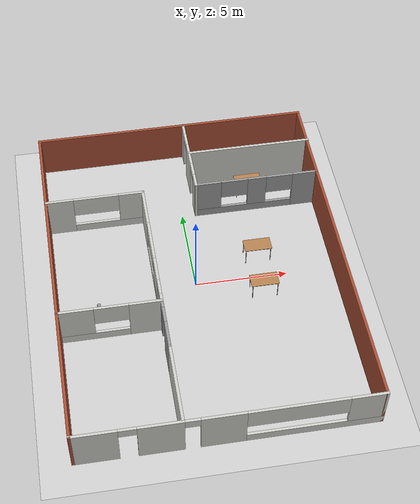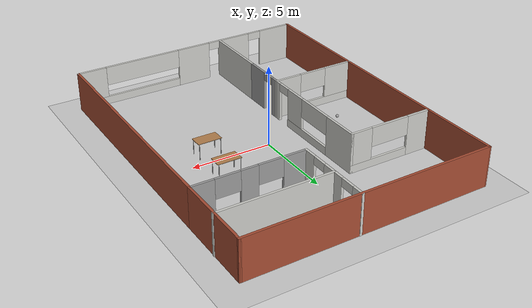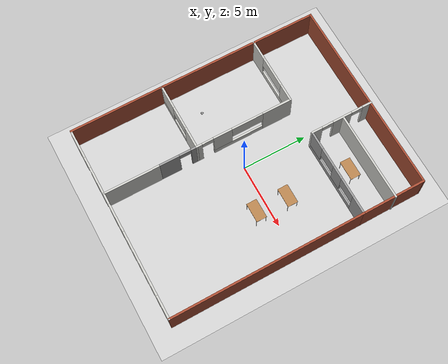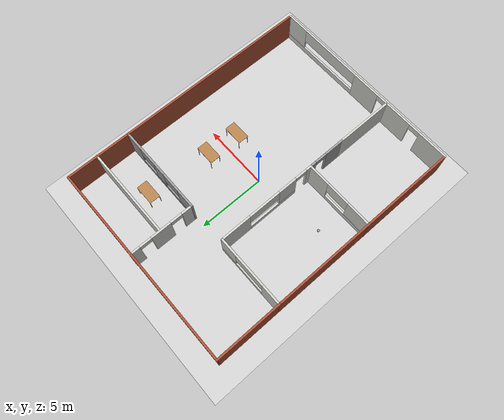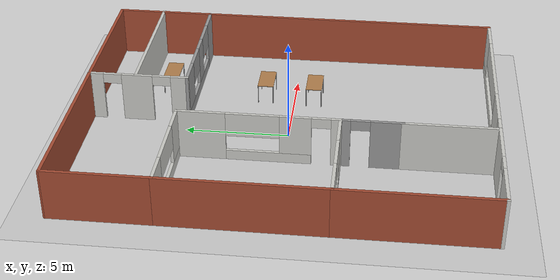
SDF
<sdf version="1.6">
 <world name="default">
  <plugin name="my_robot" filename="libmy_robot.so"/>
  <light name="sun" type="directional">
   <pose>0 0 10 0 -0 0</pose>
   <diffuse>0.8 0.8 0.8 1</diffuse>
   <specular>0.2 0.2 0.2 1</specular>
   <attenuation>
    <range>1000</range>
    <constant>0.9</constant>
    <linear>0.01</linear>
    <quadratic>0.001</quadratic>
   </attenuation>
   <direction>-0.5 0.1 -0.9</direction>
  </light>
  <model name="ground_plane">
   <static>1</static>
   <link name="link">
    <collision name="collision">
     <geometry><plane><normal>0 0 1</normal><size>100 100</size></plane></geometry>
     <surface>
      <contact><collide_bitmask>65535</collide_bitmask></contact>
      <friction><ode><mu>100</mu><mu2>50</mu2></ode></friction>
     </surface>
    </collision>
    <visual name="visual">
     <cast_shadows>0</cast_shadows>
     <geometry><plane><normal>0 0 1</normal><size>100 100</size></plane></geometry>
     <material>
      <script><uri>file://media/materials/scripts/gazebo.material</uri><name>Gazebo/Grey</name></script>
     </material>
    </visual>
   </link>
  </model>
  <gravity>0 0 -9.8</gravity>
  <magnetic_field>6e-06 2.3e-05 -4.2e-05</magnetic_field>
  <atmosphere type="adiabatic"/>
  <physics name="default_physics" default="0" type="ode">
   <max_step_size>0.001</max_step_size>
   <real_time_factor>1</real_time_factor>
   <real_time_update_rate>1000</real_time_update_rate>
  </physics>
  <scene><ambient>0.4 0.4 0.4 1</ambient><background>0.7 0.7 0.7 1</background><shadows>1</shadows></scene>
  <audio><device>default</device></audio>
  <spherical_coordinates>
   <surface_model>EARTH_WGS84</surface_model>
   <latitude_deg>0</latitude_deg>
   <longitude_deg>0</longitude_deg>
   <elevation>0</elevation>
   <heading_deg>0</heading_deg>
  </spherical_coordinates>
  <model name="house">
   <pose>0.08306 0.02682 0 0 -0 0</pose>
   <link name="Wall_10">
    <pose>-2.27041 -4.07512 0 0 -0 1.5708</pose>
    <visual name="Wall_10_Visual_0">
     <pose>-0.723472 0 1.25 0 -0 0</pose>
     <geometry><box><size>1.55306 0.15 2.5</size></box></geometry>
     <material>
      <script><uri>file://media/materials/scripts/gazebo.material</uri><name>Gazebo/Grey</name></script>
      <ambient>1 1 1 1</ambient>
     </material>
     <meta><layer>0</layer></meta>
    </visual>
    <collision name="Wall_10_Collision_0">
     <geometry><box><size>1.55306 0.15 2.5</size></box></geometry>
     <pose>-0.723472 0 1.25 0 -0 0</pose>
    </collision>
    <visual name="Wall_10_Visual_1">
     <pose>1.22653 0 1.25 0 -0 0</pose>
     <geometry><box><size>0.546944 0.15 2.5</size></box></geometry>
     <material>
      <script><uri>file://media/materials/scripts/gazebo.material</uri><name>Gazebo/Grey</name></script>
      <ambient>1 1 1 1</ambient>
     </material>
     <meta><layer>0</layer></meta>
    </visual>
    <collision name="Wall_10_Collision_1">
     <geometry><box><size>0.546944 0.15 2.5</size></box></geometry>
     <pose>1.22653 0 1.25 0 -0 0</pose>
    </collision>
    <visual name="Wall_10_Visual_2">
     <pose>0.503056 0 2.25 0 -0 0</pose>
     <geometry><box><size>0.9 0.15 0.5</size></box></geometry>
     <material>
      <script><uri>file://media/materials/scripts/gazebo.material</uri><name>Gazebo/Grey</name></script>
      <ambient>1 1 1 1</ambient>
     </material>
     <meta><layer>0</layer></meta>
    </visual>
    <collision name="Wall_10_Collision_2">
     <geometry><box><size>0.9 0.15 0.5</size></box></geometry>
     <pose>0.503056 0 2.25 0 -0 0</pose>
    </collision>
   </link>
   <link name="Wall_11">
    <pose>-4.94541 -2.65012 0 0 -0 3.14159</pose>
    <visual name="Wall_11_Visual_0">
     <pose>-1.86454 0 1.25 0 -0 0</pose>
     <geometry><box><size>1.77092 0.15 2.5</size></box></geometry>
     <material>
      <script><uri>file://media/materials/scripts/gazebo.material</uri><name>Gazebo/CeilingTiled</name></script>
      <ambient>1 1 1 1</ambient>
     </material>
     <meta><layer>0</layer></meta>
    </visual>
    <collision name="Wall_11_Collision_0">
     <geometry><box><size>1.77092 0.15 2.5</size></box></geometry>
     <pose>-1.86454 0 1.25 0 -0 0</pose>
    </collision>
    <visual name="Wall_11_Visual_1">
     <pose>0.885458 0 0.25 0 -0 0</pose>
     <geometry><box><size>3.72908 0.15 0.5</size></box></geometry>
     <material>
      <script><uri>file://media/materials/scripts/gazebo.material</uri><name>Gazebo/CeilingTiled</name></script>
      <ambient>1 1 1 1</ambient>
     </material>
     <meta><layer>0</layer></meta>
    </visual>
    <collision name="Wall_11_Collision_1">
     <geometry><box><size>3.72908 0.15 0.5</size></box></geometry>
     <pose>0.885458 0 0.25 0 -0 0</pose>
    </collision>
    <visual name="Wall_11_Visual_2">
     <pose>1.78546 0 1.5 0 -0 0</pose>
     <geometry><box><size>1.92908 0.15 2</size></box></geometry>
     <material>
      <script><uri>file://media/materials/scripts/gazebo.material</uri><name>Gazebo/CeilingTiled</name></script>
      <ambient>1 1 1 1</ambient>
     </material>
     <meta><layer>0</layer></meta>
    </visual>
    <collision name="Wall_11_Collision_2">
     <geometry><box><size>1.92908 0.15 2</size></box></geometry>
     <pose>1.78546 0 1.5 0 -0 0</pose>
    </collision>
    <visual name="Wall_11_Visual_3">
     <pose>-0.079083 0 1.9 0 -0 0</pose>
     <geometry><box><size>1.8 0.15 1.2</size></box></geometry>
     <material>
      <script><uri>file://media/materials/scripts/gazebo.material</uri><name>Gazebo/CeilingTiled</name></script>
      <ambient>1 1 1 1</ambient>
     </material>
     <meta><layer>0</layer></meta>
    </visual>
    <collision name="Wall_11_Collision_3">
     <geometry><box><size>1.8 0.15 1.2</size></box></geometry>
     <pose>-0.079083 0 1.9 0 -0 0</pose>
    </collision>
   </link>
   <link name="Wall_12">
    <collision name="Wall_12_Collision">
     <geometry><box><size>7.75 0.15 2.5</size></box></geometry>
     <pose>0 0 1.25 0 -0 0</pose>
    </collision>
    <visual name="Wall_12_Visual">
     <pose>0 0 1.25 0 -0 0</pose>
     <geometry><box><size>7.75 0.15 2.5</size></box></geometry>
     <material>
      <script><uri>file://media/materials/scripts/gazebo.material</uri><name>Gazebo/Bricks</name></script>
      <ambient>1 1 1 1</ambient>
     </material>
     <meta><layer>0</layer></meta>
    </visual>
    <pose>-7.62041 1.14988 0 0 -0 1.5708</pose>
   </link>
   <link name="Wall_13">
    <pose>-4.94541 4.94988 0 0 -0 0</pose>
    <visual name="Wall_13_Visual_0">
     <pose>-1.96046 0 1.25 0 -0 0</pose>
     <geometry><box><size>1.57908 0.15 2.5</size></box></geometry>
     <material>
      <script><uri>file://media/materials/scripts/gazebo.material</uri><name>Gazebo/CeilingTiled</name></script>
      <ambient>1 1 1 1</ambient>
     </material>
     <meta><layer>0</layer></meta>
    </visual>
    <collision name="Wall_13_Collision_0">
     <geometry><box><size>1.57908 0.15 2.5</size></box></geometry>
     <pose>-1.96046 0 1.25 0 -0 0</pose>
    </collision>
    <visual name="Wall_13_Visual_1">
     <pose>0.789542 0 0.25 0 -0 0</pose>
     <geometry><box><size>3.92092 0.15 0.5</size></box></geometry>
     <material>
      <script><uri>file://media/materials/scripts/gazebo.material</uri><name>Gazebo/CeilingTiled</name></script>
      <ambient>1 1 1 1</ambient>
     </material>
     <meta><layer>0</layer></meta>
    </visual>
    <collision name="Wall_13_Collision_1">
     <geometry><box><size>3.92092 0.15 0.5</size></box></geometry>
     <pose>0.789542 0 0.25 0 -0 0</pose>
    </collision>
    <visual name="Wall_13_Visual_2">
     <pose>2.03954 0 1.5 0 -0 0</pose>
     <geometry><box><size>1.42092 0.15 2</size></box></geometry>
     <material>
      <script><uri>file://media/materials/scripts/gazebo.material</uri><name>Gazebo/CeilingTiled</name></script>
      <ambient>1 1 1 1</ambient>
     </material>
     <meta><layer>0</layer></meta>
    </visual>
    <collision name="Wall_13_Collision_2">
     <geometry><box><size>1.42092 0.15 2</size></box></geometry>
     <pose>2.03954 0 1.5 0 -0 0</pose>
    </collision>
    <visual name="Wall_13_Visual_3">
     <pose>0.079083 0 1.9 0 -0 0</pose>
     <geometry><box><size>2.5 0.15 1.2</size></box></geometry>
     <material>
      <script><uri>file://media/materials/scripts/gazebo.material</uri><name>Gazebo/CeilingTiled</name></script>
      <ambient>1 1 1 1</ambient>
     </material>
     <meta><layer>0</layer></meta>
    </visual>
    <collision name="Wall_13_Collision_3">
     <geometry><box><size>2.5 0.15 1.2</size></box></geometry>
     <pose>0.079083 0 1.9 0 -0 0</pose>
    </collision>
   </link>
   <link name="Wall_14">
    <pose>-2.27041 1.14988 0 0 -0 -1.5708</pose>
    <visual name="Wall_14_Visual_0">
     <pose>-2.69133 0 1.25 0 -0 0</pose>
     <geometry><box><size>2.36734 0.15 2.5</size></box></geometry>
     <material>
      <script><uri>file://media/materials/scripts/gazebo.material</uri><name>Gazebo/CeilingTiled</name></script>
      <ambient>1 1 1 1</ambient>
     </material>
     <meta><layer>0</layer></meta>
    </visual>
    <collision name="Wall_14_Collision_0">
     <geometry><box><size>2.36734 0.15 2.5</size></box></geometry>
     <pose>-2.69133 0 1.25 0 -0 0</pose>
    </collision>
    <visual name="Wall_14_Visual_1">
     <pose>3.62789 0 1.25 0 -0 0</pose>
     <geometry><box><size>0.494227 0.15 2.5</size></box></geometry>
     <material>
      <script><uri>file://media/materials/scripts/gazebo.material</uri><name>Gazebo/CeilingTiled</name></script>
      <ambient>1 1 1 1</ambient>
     </material>
     <meta><layer>0</layer></meta>
    </visual>
    <collision name="Wall_14_Collision_1">
     <geometry><box><size>0.494227 0.15 2.5</size></box></geometry>
     <pose>3.62789 0 1.25 0 -0 0</pose>
    </collision>
    <visual name="Wall_14_Visual_2">
     <pose>0.486554 0 0.25 0 -0 0</pose>
     <geometry><box><size>3.98844 0.15 0.5</size></box></geometry>
     <material>
      <script><uri>file://media/materials/scripts/gazebo.material</uri><name>Gazebo/CeilingTiled</name></script>
      <ambient>1 1 1 1</ambient>
     </material>
     <meta><layer>0</layer></meta>
    </visual>
    <collision name="Wall_14_Collision_2">
     <geometry><box><size>3.98844 0.15 0.5</size></box></geometry>
     <pose>0.486554 0 0.25 0 -0 0</pose>
    </collision>
    <visual name="Wall_14_Visual_3">
     <pose>1.73655 0 1.5 0 -0 0</pose>
     <geometry><box><size>1.48844 0.15 2</size></box></geometry>
     <material>
      <script><uri>file://media/materials/scripts/gazebo.material</uri><name>Gazebo/CeilingTiled</name></script>
      <ambient>1 1 1 1</ambient>
     </material>
     <meta><layer>0</layer></meta>
    </visual>
    <collision name="Wall_14_Collision_3">
     <geometry><box><size>1.48844 0.15 2</size></box></geometry>
     <pose>1.73655 0 1.5 0 -0 0</pose>
    </collision>
    <visual name="Wall_14_Visual_4">
     <pose>-0.257665 0 1.9 0 -0 0</pose>
     <geometry><box><size>2.5 0.15 1.2</size></box></geometry>
     <material>
      <script><uri>file://media/materials/scripts/gazebo.material</uri><name>Gazebo/CeilingTiled</name></script>
      <ambient>1 1 1 1</ambient>
     </material>
     <meta><layer>0</layer></meta>
    </visual>
    <collision name="Wall_14_Collision_4">
     <geometry><box><size>2.5 0.15 1.2</size></box></geometry>
     <pose>-0.257665 0 1.9 0 -0 0</pose>
    </collision>
    <visual name="Wall_14_Visual_5">
     <pose>2.93077 0 2.25 0 -0 0</pose>
     <geometry><box><size>0.9 0.15 0.5</size></box></geometry>
     <material>
      <script><uri>file://media/materials/scripts/gazebo.material</uri><name>Gazebo/CeilingTiled</name></script>
      <ambient>1 1 1 1</ambient>
     </material>
     <meta><layer>0</layer></meta>
    </visual>
    <collision name="Wall_14_Collision_5">
     <geometry><box><size>0.9 0.15 0.5</size></box></geometry>
     <pose>2.93077 0 2.25 0 -0 0</pose>
    </collision>
   </link>
   <link name="Wall_21">
    <pose>-4.94541 -9.85012 0 0 -0 3.14159</pose>
    <visual name="Wall_21_Visual_0">
     <pose>-1.61931 0 1.25 0 -0 0</pose>
     <geometry><box><size>2.26137 0.15 2.5</size></box></geometry>
     <material>
      <script><uri>file://media/materials/scripts/gazebo.material</uri><name>Gazebo/CeilingTiled</name></script>
      <ambient>1 1 1 1</ambient>
     </material>
     <meta><layer>0</layer></meta>
    </visual>
    <collision name="Wall_21_Collision_0">
     <geometry><box><size>2.26137 0.15 2.5</size></box></geometry>
     <pose>-1.61931 0 1.25 0 -0 0</pose>
    </collision>
    <visual name="Wall_21_Visual_1">
     <pose>1.58069 0 1.25 0 -0 0</pose>
     <geometry><box><size>2.33863 0.15 2.5</size></box></geometry>
     <material>
      <script><uri>file://media/materials/scripts/gazebo.material</uri><name>Gazebo/CeilingTiled</name></script>
      <ambient>1 1 1 1</ambient>
     </material>
     <meta><layer>0</layer></meta>
    </visual>
    <collision name="Wall_21_Collision_1">
     <geometry><box><size>2.33863 0.15 2.5</size></box></geometry>
     <pose>1.58069 0 1.25 0 -0 0</pose>
    </collision>
    <visual name="Wall_21_Visual_2">
     <pose>-0.038628 0 2.25 0 -0 0</pose>
     <geometry><box><size>0.9 0.15 0.5</size></box></geometry>
     <material>
      <script><uri>file://media/materials/scripts/gazebo.material</uri><name>Gazebo/CeilingTiled</name></script>
      <ambient>1 1 1 1</ambient>
     </material>
     <meta><layer>0</layer></meta>
    </visual>
    <collision name="Wall_21_Collision_2">
     <geometry><box><size>0.9 0.15 0.5</size></box></geometry>
     <pose>-0.038628 0 2.25 0 -0 0</pose>
    </collision>
   </link>
   <link name="Wall_22">
    <collision name="Wall_22_Collision">
     <geometry><box><size>7.35 0.15 2.5</size></box></geometry>
     <pose>0 0 1.25 0 -0 0</pose>
    </collision>
    <visual name="Wall_22_Visual">
     <pose>0 0 1.25 0 -0 0</pose>
     <geometry><box><size>7.35 0.15 2.5</size></box></geometry>
     <material>
      <script><uri>file://media/materials/scripts/gazebo.material</uri><name>Gazebo/Bricks</name></script>
      <ambient>1 1 1 1</ambient>
     </material>
     <meta><layer>0</layer></meta>
    </visual>
    <pose>-7.62041 -6.25012 0 0 -0 1.5708</pose>
   </link>
   <link name="Wall_24">
    <collision name="Wall_24_Collision">
     <geometry><box><size>5 0.15 2.5</size></box></geometry>
     <pose>0 0 1.25 0 -0 0</pose>
    </collision>
    <visual name="Wall_24_Visual">
     <pose>0 0 1.25 0 -0 0</pose>
     <geometry><box><size>5 0.15 2.5</size></box></geometry>
     <material>
      <script><uri>file://media/materials/scripts/gazebo.material</uri><name>Gazebo/Bricks</name></script>
      <ambient>1 1 1 1</ambient>
     </material>
     <meta><layer>0</layer></meta>
    </visual>
    <pose>-7.62041 7.37488 0 0 -0 1.5708</pose>
   </link>
   <link name="Wall_28">
    <collision name="Wall_28_Collision">
     <geometry><box><size>5 0.15 2.5</size></box></geometry>
     <pose>0 0 1.25 0 -0 0</pose>
    </collision>
    <visual name="Wall_28_Visual">
     <pose>0 0 1.25 0 -0 0</pose>
     <geometry><box><size>5 0.15 2.5</size></box></geometry>
     <material>
      <script><uri>file://media/materials/scripts/gazebo.material</uri><name>Gazebo/Bricks</name></script>
      <ambient>1 1 1 1</ambient>
     </material>
     <meta><layer>0</layer></meta>
    </visual>
    <pose>7.57959 7.42488 0 0 -0 1.5708</pose>
   </link>
   <link name="Wall_29">
    <collision name="Wall_29_Collision">
     <geometry><box><size>15.3501 0.15 2.5</size></box></geometry>
     <pose>0 0 1.25 0 -0 0</pose>
    </collision>
    <visual name="Wall_29_Visual">
     <pose>0 0 1.25 0 -0 0</pose>
     <geometry><box><size>15.3501 0.15 2.5</size></box></geometry>
     <material>
      <script><uri>file://media/materials/scripts/gazebo.material</uri><name>Gazebo/Bricks</name></script>
      <ambient>1 1 1 1</ambient>
     </material>
     <meta><layer>0</layer></meta>
    </visual>
    <pose>-0.02041 9.82488 0 0 -0 -3.1383</pose>
   </link>
   <link name="Wall_31">
    <pose>0.72959 7.42488 0 0 -0 1.5708</pose>
    <visual name="Wall_31_Visual_0">
     <pose>-2.05633 0 1.25 0 -0 0</pose>
     <geometry><box><size>0.887335 0.15 2.5</size></box></geometry>
     <material>
      <script><uri>file://media/materials/scripts/gazebo.material</uri><name>Gazebo/CeilingTiled</name></script>
      <ambient>1 1 1 1</ambient>
     </material>
     <meta><layer>0</layer></meta>
    </visual>
    <collision name="Wall_31_Collision_0">
     <geometry><box><size>0.887335 0.15 2.5</size></box></geometry>
     <pose>-2.05633 0 1.25 0 -0 0</pose>
    </collision>
    <visual name="Wall_31_Visual_1">
     <pose>0.051002 0 1.25 0 -0 0</pose>
     <geometry><box><size>1.52734 0.15 2.5</size></box></geometry>
     <material>
      <script><uri>file://media/materials/scripts/gazebo.material</uri><name>Gazebo/CeilingTiled</name></script>
      <ambient>1 1 1 1</ambient>
     </material>
     <meta><layer>0</layer></meta>
    </visual>
    <collision name="Wall_31_Collision_1">
     <geometry><box><size>1.52734 0.15 2.5</size></box></geometry>
     <pose>0.051002 0 1.25 0 -0 0</pose>
    </collision>
    <visual name="Wall_31_Visual_2">
     <pose>2.10733 0 1.25 0 -0 0</pose>
     <geometry><box><size>0.785331 0.15 2.5</size></box></geometry>
     <material>
      <script><uri>file://media/materials/scripts/gazebo.material</uri><name>Gazebo/CeilingTiled</name></script>
      <ambient>1 1 1 1</ambient>
     </material>
     <meta><layer>0</layer></meta>
    </visual>
    <collision name="Wall_31_Collision_2">
     <geometry><box><size>0.785331 0.15 2.5</size></box></geometry>
     <pose>2.10733 0 1.25 0 -0 0</pose>
    </collision>
    <visual name="Wall_31_Visual_3">
     <pose>-1.16267 0 2.25 0 -0 0</pose>
     <geometry><box><size>0.9 0.15 0.5</size></box></geometry>
     <material>
      <script><uri>file://media/materials/scripts/gazebo.material</uri><name>Gazebo/CeilingTiled</name></script>
      <ambient>1 1 1 1</ambient>
     </material>
     <meta><layer>0</layer></meta>
    </visual>
    <collision name="Wall_31_Collision_3">
     <geometry><box><size>0.9 0.15 0.5</size></box></geometry>
     <pose>-1.16267 0 2.25 0 -0 0</pose>
    </collision>
    <visual name="Wall_31_Visual_4">
     <pose>1.26467 0 2.25 0 -0 0</pose>
     <geometry><box><size>0.9 0.15 0.5</size></box></geometry>
     <material>
      <script><uri>file://media/materials/scripts/gazebo.material</uri><name>Gazebo/CeilingTiled</name></script>
      <ambient>1 1 1 1</ambient>
     </material>
     <meta><layer>0</layer></meta>
    </visual>
    <collision name="Wall_31_Collision_4">
     <geometry><box><size>0.9 0.15 0.5</size></box></geometry>
     <pose>1.26467 0 2.25 0 -0 0</pose>
    </collision>
   </link>
   <link name="Wall_35">
    <collision name="Wall_35_Collision">
     <geometry><box><size>7 0.15 2.5</size></box></geometry>
     <pose>0 0 1.25 0 -0 0</pose>
    </collision>
    <visual name="Wall_35_Visual">
     <pose>0 0 1.25 0 -0 0</pose>
     <geometry><box><size>7 0.15 2.5</size></box></geometry>
     <material>
      <script><uri>file://media/materials/scripts/gazebo.material</uri><name>Gazebo/CeilingTiled</name></script>
      <ambient>1 1 1 1</ambient>
     </material>
     <meta><layer>0</layer></meta>
    </visual>
    <pose>4.19566 7.53969 0 0 -0 0</pose>
   </link>
   <link name="Wall_4">
    <pose>2.65459 -9.85012 0 0 -0 0</pose>
    <visual name="Wall_4_Visual_0">
     <pose>-4.99212 0 1.25 0 -0 0</pose>
     <geometry><box><size>0.015765 0.15 2.5</size></box></geometry>
     <material>
      <script><uri>file://media/materials/scripts/gazebo.material</uri><name>Gazebo/CeilingTiled</name></script>
      <ambient>1 1 1 1</ambient>
     </material>
     <meta><layer>0</layer></meta>
    </visual>
    <collision name="Wall_4_Collision_0">
     <geometry><box><size>0.015765 0.15 2.5</size></box></geometry>
     <pose>-4.99212 0 1.25 0 -0 0</pose>
    </collision>
    <visual name="Wall_4_Visual_1">
     <pose>-2.96656 0 1.25 0 -0 0</pose>
     <geometry><box><size>2.23535 0.15 2.5</size></box></geometry>
     <material>
      <script><uri>file://media/materials/scripts/gazebo.material</uri><name>Gazebo/CeilingTiled</name></script>
      <ambient>1 1 1 1</ambient>
     </material>
     <meta><layer>0</layer></meta>
    </visual>
    <collision name="Wall_4_Collision_1">
     <geometry><box><size>2.23535 0.15 2.5</size></box></geometry>
     <pose>-2.96656 0 1.25 0 -0 0</pose>
    </collision>
    <visual name="Wall_4_Visual_2">
     <pose>1.57556 0 0.25 0 -0 0</pose>
     <geometry><box><size>6.84889 0.15 0.5</size></box></geometry>
     <material>
      <script><uri>file://media/materials/scripts/gazebo.material</uri><name>Gazebo/CeilingTiled</name></script>
      <ambient>1 1 1 1</ambient>
     </material>
     <meta><layer>0</layer></meta>
    </visual>
    <collision name="Wall_4_Collision_2">
     <geometry><box><size>6.84889 0.15 0.5</size></box></geometry>
     <pose>1.57556 0 0.25 0 -0 0</pose>
    </collision>
    <visual name="Wall_4_Visual_3">
     <pose>4.07555 0 1.5 0 -0 0</pose>
     <geometry><box><size>1.84889 0.15 2</size></box></geometry>
     <material>
      <script><uri>file://media/materials/scripts/gazebo.material</uri><name>Gazebo/CeilingTiled</name></script>
      <ambient>1 1 1 1</ambient>
     </material>
     <meta><layer>0</layer></meta>
    </visual>
    <collision name="Wall_4_Collision_3">
     <geometry><box><size>1.84889 0.15 2</size></box></geometry>
     <pose>4.07555 0 1.5 0 -0 0</pose>
    </collision>
    <visual name="Wall_4_Visual_4">
     <pose>0.65111 0 1.9 0 -0 0</pose>
     <geometry><box><size>5 0.15 1.2</size></box></geometry>
     <material>
      <script><uri>file://media/materials/scripts/gazebo.material</uri><name>Gazebo/CeilingTiled</name></script>
      <ambient>1 1 1 1</ambient>
     </material>
     <meta><layer>0</layer></meta>
    </visual>
    <collision name="Wall_4_Collision_4">
     <geometry><box><size>5 0.15 1.2</size></box></geometry>
     <pose>0.65111 0 1.9 0 -0 0</pose>
    </collision>
    <visual name="Wall_4_Visual_5">
     <pose>-4.53423 0 2.25 0 -0 0</pose>
     <geometry><box><size>0.9 0.15 0.5</size></box></geometry>
     <material>
      <script><uri>file://media/materials/scripts/gazebo.material</uri><name>Gazebo/CeilingTiled</name></script>
      <ambient>1 1 1 1</ambient>
     </material>
     <meta><layer>0</layer></meta>
    </visual>
    <collision name="Wall_4_Collision_5">
     <geometry><box><size>0.9 0.15 0.5</size></box></geometry>
     <pose>-4.53423 0 2.25 0 -0 0</pose>
    </collision>
   </link>
   <link name="Wall_5">
    <collision name="Wall_5_Collision">
     <geometry><box><size>15 0.15 2.5</size></box></geometry>
     <pose>0 0 1.25 0 -0 0</pose>
    </collision>
    <visual name="Wall_5_Visual">
     <pose>0 0 1.25 0 -0 0</pose>
     <geometry><box><size>15 0.15 2.5</size></box></geometry>
     <material>
      <script><uri>file://media/materials/scripts/gazebo.material</uri><name>Gazebo/Bricks</name></script>
      <ambient>1 1 1 1</ambient>
     </material>
     <meta><layer>0</layer></meta>
    </visual>
    <pose>7.57959 -2.42512 0 0 -0 1.5708</pose>
   </link>
   <link name="Wall_7">
    <pose>4.15459 4.99988 0 0 -0 3.14159</pose>
    <visual name="Wall_7_Visual_0">
     <pose>-2.77263 0 1.25 0 -0 0</pose>
     <geometry><box><size>1.45474 0.15 2.5</size></box></geometry>
     <material>
      <script><uri>file://media/materials/scripts/gazebo.material</uri><name>Gazebo/Grey</name></script>
      <ambient>1 1 1 1</ambient>
     </material>
     <meta><layer>0</layer></meta>
    </visual>
    <collision name="Wall_7_Collision_0">
     <geometry><box><size>1.45474 0.15 2.5</size></box></geometry>
     <pose>-2.77263 0 1.25 0 -0 0</pose>
    </collision>
    <visual name="Wall_7_Visual_1">
     <pose>0.727372 0 0.25 0 -0 0</pose>
     <geometry><box><size>5.54526 0.15 0.5</size></box></geometry>
     <material>
      <script><uri>file://media/materials/scripts/gazebo.material</uri><name>Gazebo/Grey</name></script>
      <ambient>1 1 1 1</ambient>
     </material>
     <meta><layer>0</layer></meta>
    </visual>
    <collision name="Wall_7_Collision_1">
     <geometry><box><size>5.54526 0.15 0.5</size></box></geometry>
     <pose>0.727372 0 0.25 0 -0 0</pose>
    </collision>
    <visual name="Wall_7_Visual_2">
     <pose>-0.020905 0 1.5 0 -0 0</pose>
     <geometry><box><size>1.0487 0.15 2</size></box></geometry>
     <material>
      <script><uri>file://media/materials/scripts/gazebo.material</uri><name>Gazebo/Grey</name></script>
      <ambient>1 1 1 1</ambient>
     </material>
     <meta><layer>0</layer></meta>
    </visual>
    <collision name="Wall_7_Collision_2">
     <geometry><box><size>1.0487 0.15 2</size></box></geometry>
     <pose>-0.020905 0 1.5 0 -0 0</pose>
    </collision>
    <visual name="Wall_7_Visual_3">
     <pose>2.75172 0 1.5 0 -0 0</pose>
     <geometry><box><size>1.49655 0.15 2</size></box></geometry>
     <material>
      <script><uri>file://media/materials/scripts/gazebo.material</uri><name>Gazebo/Grey</name></script>
      <ambient>1 1 1 1</ambient>
     </material>
     <meta><layer>0</layer></meta>
    </visual>
    <collision name="Wall_7_Collision_3">
     <geometry><box><size>1.49655 0.15 2</size></box></geometry>
     <pose>2.75172 0 1.5 0 -0 0</pose>
    </collision>
    <visual name="Wall_7_Visual_4">
     <pose>-1.29526 0 1.9 0 -0 0</pose>
     <geometry><box><size>1.5 0.15 1.2</size></box></geometry>
     <material>
      <script><uri>file://media/materials/scripts/gazebo.material</uri><name>Gazebo/Grey</name></script>
      <ambient>1 1 1 1</ambient>
     </material>
     <meta><layer>0</layer></meta>
    </visual>
    <collision name="Wall_7_Collision_4">
     <geometry><box><size>1.5 0.15 1.2</size></box></geometry>
     <pose>-1.29526 0 1.9 0 -0 0</pose>
    </collision>
    <visual name="Wall_7_Visual_5">
     <pose>1.25345 0 1.9 0 -0 0</pose>
     <geometry><box><size>1.5 0.15 1.2</size></box></geometry>
     <material>
      <script><uri>file://media/materials/scripts/gazebo.material</uri><name>Gazebo/Grey</name></script>
      <ambient>1 1 1 1</ambient>
     </material>
     <meta><layer>0</layer></meta>
    </visual>
    <collision name="Wall_7_Collision_5">
     <geometry><box><size>1.5 0.15 1.2</size></box></geometry>
     <pose>1.25345 0 1.9 0 -0 0</pose>
    </collision>
   </link>
   <link name="Wall_9">
    <collision name="Wall_9_Collision">
     <geometry><box><size>4.5 0.15 2.5</size></box></geometry>
     <pose>0 0 1.25 0 -0 0</pose>
    </collision>
    <visual name="Wall_9_Visual">
     <pose>0 0 1.25 0 -0 0</pose>
     <geometry><box><size>4.5 0.15 2.5</size></box></geometry>
     <material>
      <script><uri>file://media/materials/scripts/gazebo.material</uri><name>Gazebo/CeilingTiled</name></script>
      <ambient>1 1 1 1</ambient>
     </material>
     <meta><layer>0</layer></meta>
    </visual>
    <pose>-2.27041 -7.67512 0 0 -0 1.5708</pose>
   </link>
   <static>1</static>
  </model>
  <model name="table">
   <static>1</static>
   <link name="link">
    <collision name="surface">
     <pose>0 0 1 0 -0 0</pose>
     <geometry><box><size>1.5 0.8 0.03</size></box></geometry>
     <surface><friction><ode><mu>0.6</mu><mu2>0.6</mu2></ode></friction></surface>
    </collision>
    <visual name="visual1">
     <pose>0 0 1 0 -0 0</pose>
     <geometry><box><size>1.5 0.8 0.03</size></box></geometry>
     <material>
      <script><uri>file://media/materials/scripts/gazebo.material</uri><name>Gazebo/Wood</name></script>
     </material>
    </visual>
    <collision name="front_left_leg">
     <pose>0.68 0.38 0.5 0 -0 0</pose>
     <geometry><cylinder><radius>0.02</radius><length>1</length></cylinder></geometry>
    </collision>
    <visual name="front_left_leg">
     <pose>0.68 0.38 0.5 0 -0 0</pose>
     <geometry><cylinder><radius>0.02</radius><length>1</length></cylinder></geometry>
     <material>
      <script><uri>file://media/materials/scripts/gazebo.material</uri><name>Gazebo/Grey</name></script>
     </material>
    </visual>
    <collision name="front_right_leg">
     <pose>0.68 -0.38 0.5 0 -0 0</pose>
     <geometry><cylinder><radius>0.02</radius><length>1</length></cylinder></geometry>
    </collision>
    <visual name="front_right_leg">
     <pose>0.68 -0.38 0.5 0 -0 0</pose>
     <geometry><cylinder><radius>0.02</radius><length>1</length></cylinder></geometry>
     <material>
      <script><uri>file://media/materials/scripts/gazebo.material</uri><name>Gazebo/Grey</name></script>
     </material>
    </visual>
    <collision name="back_right_leg">
     <pose>-0.68 -0.38 0.5 0 -0 0</pose>
     <geometry><cylinder><radius>0.02</radius><length>1</length></cylinder></geometry>
    </collision>
    <visual name="back_right_leg">
     <pose>-0.68 -0.38 0.5 0 -0 0</pose>
     <geometry><cylinder><radius>0.02</radius><length>1</length></cylinder></geometry>
     <material>
      <script><uri>file://media/materials/scripts/gazebo.material</uri><name>Gazebo/Grey</name></script>
     </material>
    </visual>
    <collision name="back_left_leg">
     <pose>-0.68 0.38 0.5 0 -0 0</pose>
     <geometry><cylinder><radius>0.02</radius><length>1</length></cylinder></geometry>
    </collision>
    <visual name="back_left_leg">
     <pose>-0.68 0.38 0.5 0 -0 0</pose>
     <geometry><cylinder><radius>0.02</radius><length>1</length></cylinder></geometry>
     <material>
      <script><uri>file://media/materials/scripts/gazebo.material</uri><name>Gazebo/Grey</name></script>
     </material>
    </visual>
   </link>
   <pose>3.62853 1.45791 0 0 -0 0</pose>
  </model>
  <model name="table_0">
   <static>1</static>
   <link name="link">
    <collision name="surface">
     <pose>0 0 1 0 -0 0</pose>
     <geometry><box><size>1.5 0.8 0.03</size></box></geometry>
     <surface><friction><ode><mu>0.6</mu><mu2>0.6</mu2></ode></friction></surface>
    </collision>
    <visual name="visual1">
     <pose>0 0 1 0 -0 0</pose>
     <geometry><box><size>1.5 0.8 0.03</size></box></geometry>
     <material>
      <script><uri>file://media/materials/scripts/gazebo.material</uri><name>Gazebo/Wood</name></script>
     </material>
    </visual>
    <collision name="front_left_leg">
     <pose>0.68 0.38 0.5 0 -0 0</pose>
     <geometry><cylinder><radius>0.02</radius><length>1</length></cylinder></geometry>
    </collision>
    <visual name="front_left_leg">
     <pose>0.68 0.38 0.5 0 -0 0</pose>
     <geometry><cylinder><radius>0.02</radius><length>1</length></cylinder></geometry>
     <material>
      <script><uri>file://media/materials/scripts/gazebo.material</uri><name>Gazebo/Grey</name></script>
     </material>
    </visual>
    <collision name="front_right_leg">
     <pose>0.68 -0.38 0.5 0 -0 0</pose>
     <geometry><cylinder><radius>0.02</radius><length>1</length></cylinder></geometry>
    </collision>
    <visual name="front_right_leg">
     <pose>0.68 -0.38 0.5 0 -0 0</pose>
     <geometry><cylinder><radius>0.02</radius><length>1</length></cylinder></geometry>
     <material>
      <script><uri>file://media/materials/scripts/gazebo.material</uri><name>Gazebo/Grey</name></script>
     </material>
    </visual>
    <collision name="back_right_leg">
     <pose>-0.68 -0.38 0.5 0 -0 0</pose>
     <geometry><cylinder><radius>0.02</radius><length>1</length></cylinder></geometry>
    </collision>
    <visual name="back_right_leg">
     <pose>-0.68 -0.38 0.5 0 -0 0</pose>
     <geometry><cylinder><radius>0.02</radius><length>1</length></cylinder></geometry>
     <material>
      <script><uri>file://media/materials/scripts/gazebo.material</uri><name>Gazebo/Grey</name></script>
     </material>
    </visual>
    <collision name="back_left_leg">
     <pose>-0.68 0.38 0.5 0 -0 0</pose>
     <geometry><cylinder><radius>0.02</radius><length>1</length></cylinder></geometry>
    </collision>
    <visual name="back_left_leg">
     <pose>-0.68 0.38 0.5 0 -0 0</pose>
     <geometry><cylinder><radius>0.02</radius><length>1</length></cylinder></geometry>
     <material>
      <script><uri>file://media/materials/scripts/gazebo.material</uri><name>Gazebo/Grey</name></script>
     </material>
    </visual>
   </link>
   <pose>3.52814 -0.995524 0 0 -0 0</pose>
  </model>
  <model name="table_1">
   <static>1</static>
   <link name="link">
    <collision name="surface">
     <pose>0 0 1 0 -0 0</pose>
     <geometry><box><size>1.5 0.8 0.03</size></box></geometry>
     <surface><friction><ode><mu>0.6</mu><mu2>0.6</mu2></ode></friction></surface>
    </collision>
    <visual name="visual1">
     <pose>0 0 1 0 -0 0</pose>
     <geometry><box><size>1.5 0.8 0.03</size></box></geometry>
     <material>
      <script><uri>file://media/materials/scripts/gazebo.material</uri><name>Gazebo/Wood</name></script>
     </material>
    </visual>
    <collision name="front_left_leg">
     <pose>0.68 0.38 0.5 0 -0 0</pose>
     <geometry><cylinder><radius>0.02</radius><length>1</length></cylinder></geometry>
    </collision>
    <visual name="front_left_leg">
     <pose>0.68 0.38 0.5 0 -0 0</pose>
     <geometry><cylinder><radius>0.02</radius><length>1</length></cylinder></geometry>
     <material>
      <script><uri>file://media/materials/scripts/gazebo.material</uri><name>Gazebo/Grey</name></script>
     </material>
    </visual>
    <collision name="front_right_leg">
     <pose>0.68 -0.38 0.5 0 -0 0</pose>
     <geometry><cylinder><radius>0.02</radius><length>1</length></cylinder></geometry>
    </collision>
    <visual name="front_right_leg">
     <pose>0.68 -0.38 0.5 0 -0 0</pose>
     <geometry><cylinder><radius>0.02</radius><length>1</length></cylinder></geometry>
     <material>
      <script><uri>file://media/materials/scripts/gazebo.material</uri><name>Gazebo/Grey</name></script>
     </material>
    </visual>
    <collision name="back_right_leg">
     <pose>-0.68 -0.38 0.5 0 -0 0</pose>
     <geometry><cylinder><radius>0.02</radius><length>1</length></cylinder></geometry>
    </collision>
    <visual name="back_right_leg">
     <pose>-0.68 -0.38 0.5 0 -0 0</pose>
     <geometry><cylinder><radius>0.02</radius><length>1</length></cylinder></geometry>
     <material>
      <script><uri>file://media/materials/scripts/gazebo.material</uri><name>Gazebo/Grey</name></script>
     </material>
    </visual>
    <collision name="back_left_leg">
     <pose>-0.68 0.38 0.5 0 -0 0</pose>
     <geometry><cylinder><radius>0.02</radius><length>1</length></cylinder></geometry>
    </collision>
    <visual name="back_left_leg">
     <pose>-0.68 0.38 0.5 0 -0 0</pose>
     <geometry><cylinder><radius>0.02</radius><length>1</length></cylinder></geometry>
     <material>
      <script><uri>file://media/materials/scripts/gazebo.material</uri><name>Gazebo/Grey</name></script>
     </material>
    </visual>
   </link>
   <pose>4.02262 6.38439 0 0 -0 0</pose>
  </model>
  <model name="ball">
   <link name="link_0">
    <inertial>
     <mass>1</mass>
     <inertia><ixx>0.1</ixx><ixy>0</ixy><ixz>0</ixz><iyy>0.1</iyy><iyz>0</iyz><izz>0.1</izz></inertia>
    </inertial>
    <visual name="visual">
     <geometry><sphere><radius>0.1</radius></sphere></geometry>
     <material>
      <lighting>1</lighting>
      <script><uri>file://media/materials/scripts/gazebo.material</uri><name>Gazebo/Grey</name></script>
      <shader type="vertex"><normal_map>__default__</normal_map></shader>
      <ambient>1 1 1 1</ambient>
      <diffuse>1 1 1 1</diffuse>
      <specular>1 1 1 1</specular>
      <emissive>1 1 1 1</emissive>
     </material>
    </visual>
    <collision name="collision">
     <geometry><sphere><radius>0.1</radius></sphere></geometry>
     <surface>
      <friction>
       <ode><mu>1</mu><mu2>1</mu2><fdir1>0 0 0</fdir1><slip1>0</slip1><slip2>0</slip2></ode>
       <torsional>
        <coefficient>1</coefficient>
        <patch_radius>0</patch_radius>
        <surface_radius>0</surface_radius>
        <use_patch_radius>1</use_patch_radius>
        <ode><slip>0</slip></ode>
       </torsional>
      </friction>
      <bounce><restitution_coefficient>0</restitution_coefficient><threshold>1e+06</threshold></bounce>
      <contact>
       <collide_without_contact>0</collide_without_contact>
       <collide_without_contact_bitmask>1</collide_without_contact_bitmask>
       <collide_bitmask>1</collide_bitmask>
       <ode>
        <soft_cfm>0</soft_cfm>
        <soft_erp>0.2</soft_erp>
        <kp>1e+13</kp>
        <kd>1</kd>
        <max_vel>0.01</max_vel>
        <min_depth>0</min_depth>
       </ode>
       <bullet>
        <split_impulse>1</split_impulse>
        <split_impulse_penetration_threshold>-0.01</split_impulse_penetration_threshold>
        <soft_cfm>0</soft_cfm>
        <soft_erp>0.2</soft_erp>
        <kp>1e+13</kp>
        <kd>1</kd>
       </bullet>
      </contact>
     </surface>
    </collision>
   </link>
   <static>0</static>
   <pose>-5.35136 -0.637879 0.1 0 -0 0</pose>
  </model>
 </world>
</sdf>
